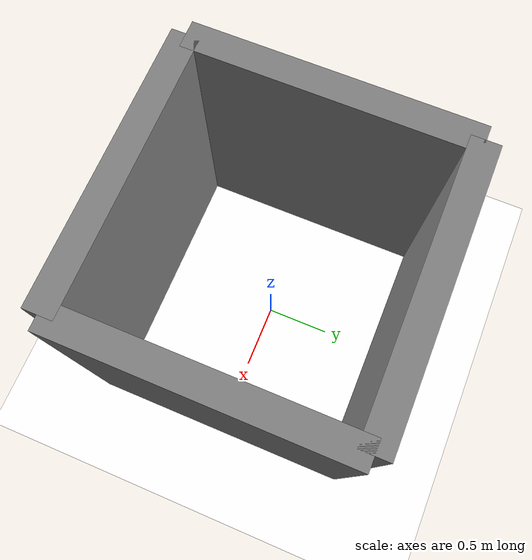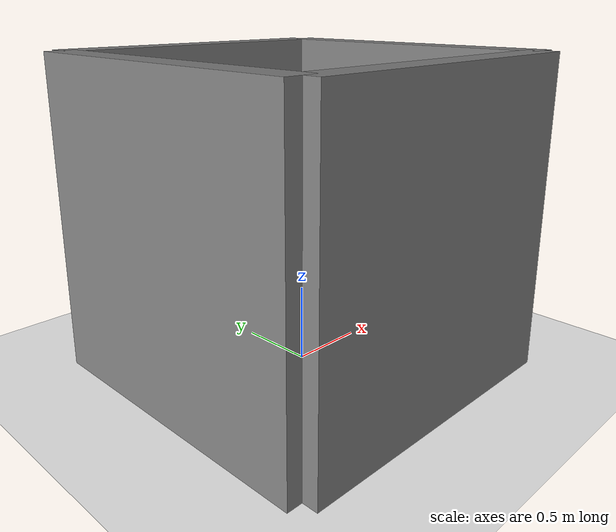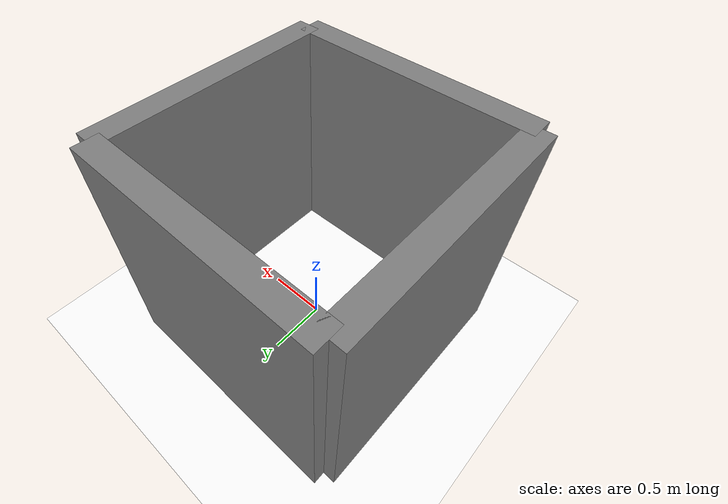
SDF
<?xml version="1.0" ?>
<sdf version="1.7">
  <world name="room_world">

    <light name="sun" type="directional">
    <cast_shadows>true</cast_shadows>
    <pose>0 0 10 0 0 0</pose> <!-- Posición arriba de la habitación -->
    <diffuse>1 1 1 1</diffuse> <!-- Luz blanca -->
    <specular>0.1 0.1 0.1 1</specular>
    <direction>0 0 -1</direction> <!-- Apunta directamente hacia abajo -->
    </light>

    <!-- Suelo plano blanco 2x2 m -->
    <model name="ground_plane">
      <static>true</static>
      <link name="link">
        <collision name="collision">
          <geometry>
            <plane>
              <normal>0 0 1</normal>
              <size>2 2</size>
            </plane>
          </geometry>
        </collision>
        <visual name="visual">
          <geometry>
            <plane>
              <normal>0 0 1</normal>
              <size>2 2</size>
            </plane>
          </geometry>
          <material>
            <ambient>1 1 1 1</ambient>
            <diffuse>1 1 1 1</diffuse>
          </material>
        </visual>
      </link>
    </model>

    <!-- Pared norte gris -->
    <model name="wall_north">
      <static>true</static>
      <pose>0 1 1 0 0 0</pose>
      <link name="link">
        <collision name="collision">
          <geometry>
            <box>
              <size>2 0.2 2</size>
            </box>
          </geometry>
        </collision>
        <visual name="visual">
          <geometry>
            <box>
              <size>2 0.2 2</size>
            </box>
          </geometry>
          <material>
            <ambient>0.5 0.5 0.5 1</ambient>
            <diffuse>0.5 0.5 0.5 1</diffuse>
          </material>
        </visual>
      </link>
    </model>

    <!-- Pared sur gris -->
    <model name="wall_south">
      <static>true</static>
      <pose>0 -1 1 0 0 0</pose>
      <link name="link">
        <collision name="collision">
          <geometry>
            <box>
              <size>2 0.2 2</size>
            </box>
          </geometry>
        </collision>
        <visual name="visual">
          <geometry>
            <box>
              <size>2 0.2 2</size>
            </box>
          </geometry>
          <material>
            <ambient>0.5 0.5 0.5 1</ambient>
            <diffuse>0.5 0.5 0.5 1</diffuse>
          </material>
        </visual>
      </link>
    </model>

    <!-- Pared este gris -->
    <model name="wall_east">
      <static>true</static>
      <pose>1 0 1 0 0 0</pose>
      <link name="link">
        <collision name="collision">
          <geometry>
            <box>
              <size>0.2 2 2</size>
            </box>
          </geometry>
        </collision>
        <visual name="visual">
          <geometry>
            <box>
              <size>0.2 2 2</size>
            </box>
          </geometry>
          <material>
            <ambient>0.5 0.5 0.5 1</ambient>
            <diffuse>0.5 0.5 0.5 1</diffuse>
          </material>
        </visual>
      </link>
    </model>

    <!-- Pared oeste gris -->
    <model name="wall_west">
      <static>true</static>
      <pose>-1 0 1 0 0 0</pose>
      <link name="link">
        <collision name="collision">
          <geometry>
            <box>
              <size>0.2 2 2</size>
            </box>
          </geometry>
        </collision>
        <visual name="visual">
          <geometry>
            <box>
              <size>0.2 2 2</size>
            </box>
          </geometry>
          <material>
            <ambient>0.5 0.5 0.5 1</ambient>
            <diffuse>0.5 0.5 0.5 1</diffuse>
          </material>
        </visual>
      </link>
    </model>

  </world>
</sdf>
